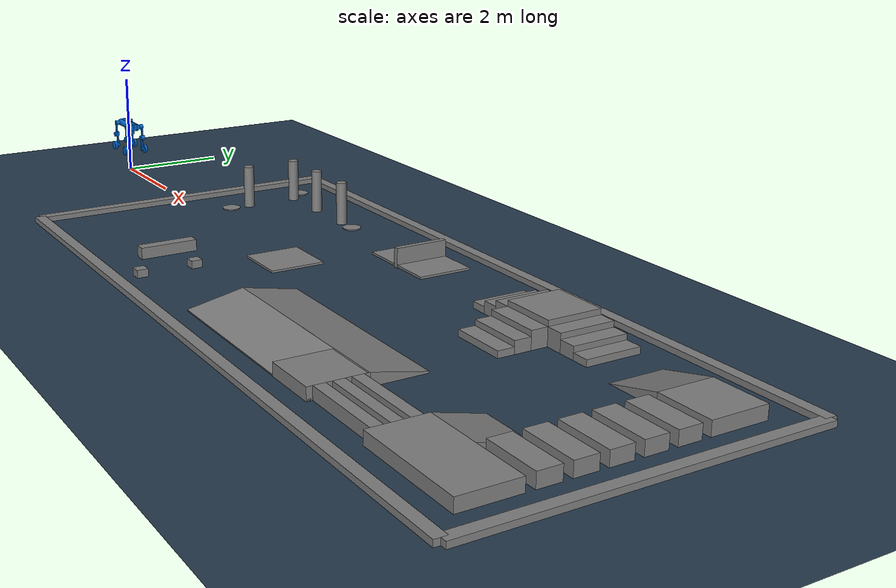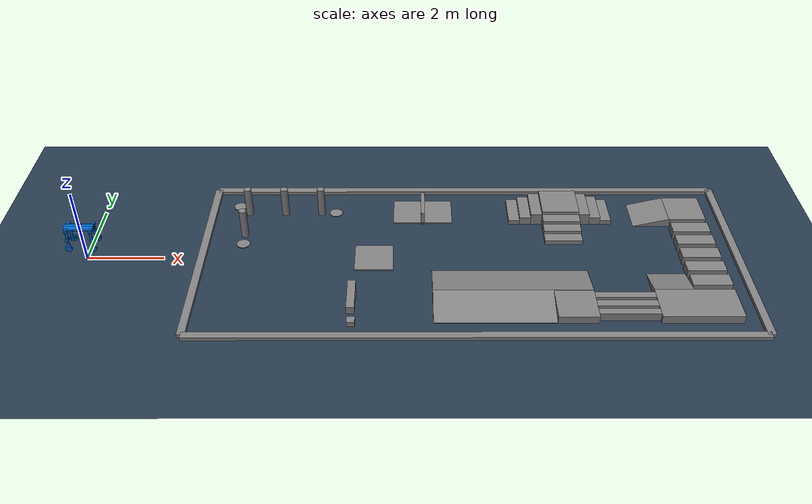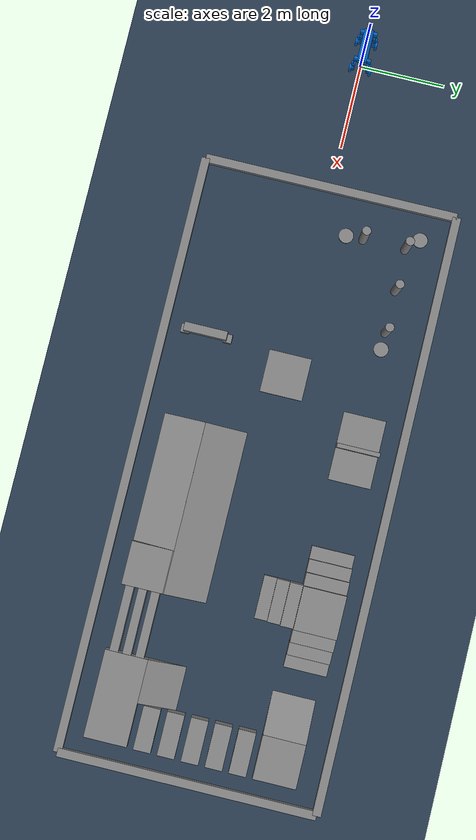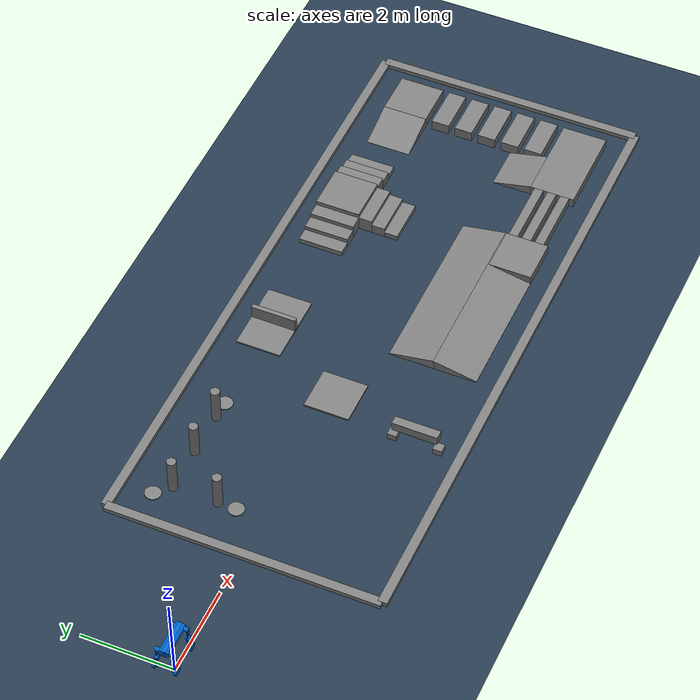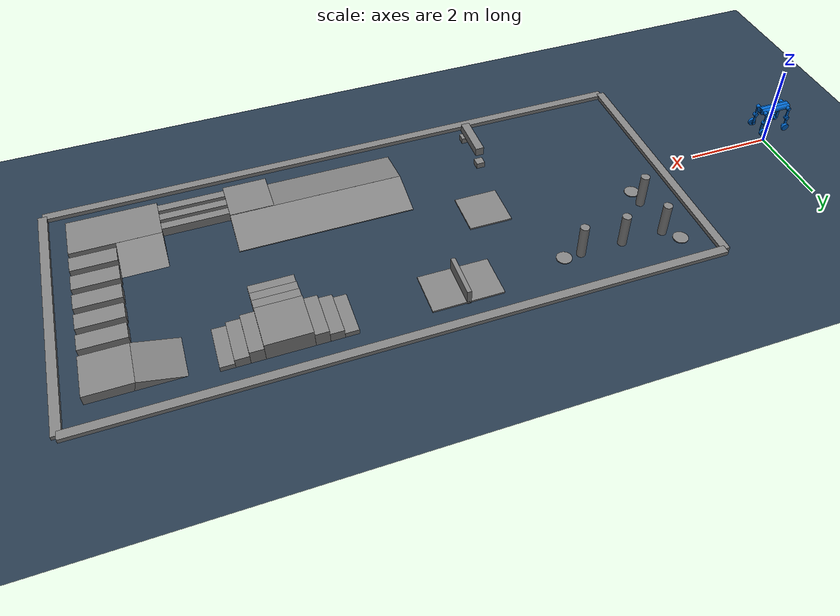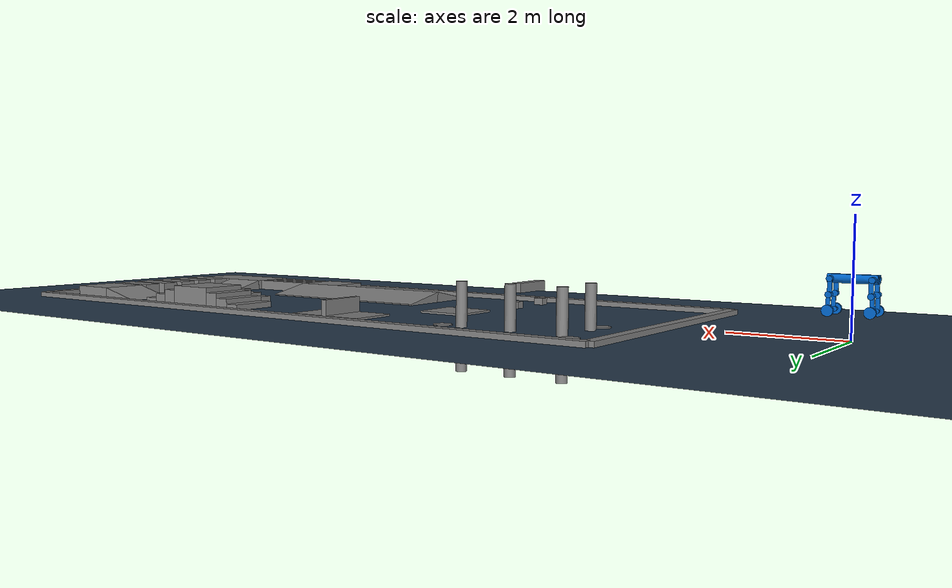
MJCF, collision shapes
<mujoco model="M20">

    <default>
        <default class="robot">
            <default class="motor">
                <joint/>
                <motor/>
            </default>
            <default class="visual">
                <geom material="default_material" contype="0" conaffinity="0" group="2"/>
            </default>
            <default class="collision">
                <geom material="collision_material" condim="3" contype="1" conaffinity="1" solref="0.005 1"
                      friction="1 0.01 0.001" density="0" group="1"/>
            </default>
        </default>
    </default>

    <compiler angle="radian" meshdir="../meshes/"/>
    <compiler autolimits="true"/>

    <asset>
        <material name="default_material" rgba="0.7 0.7 0.7 1"/>
        <material name="collision_material" rgba="0.0 0.4 0.8 0.2"/>
        <mesh name="base_link" file="base_link.STL"/>
        <mesh name="fl_hipx" file="fl_hipx.STL"/>
        <mesh name="fl_hipy" file="fl_hipy.STL"/>
        <mesh name="fl_knee" file="fl_knee.STL"/>
        <mesh name="fl_wheel" file="fl_wheel.STL"/>
        <mesh name="fr_hipx" file="fr_hipx.STL"/>
        <mesh name="fr_hipy" file="fr_hipy.STL"/>
        <mesh name="fr_knee" file="fr_knee.STL"/>
        <mesh name="fr_wheel" file="fr_wheel.STL"/>
        <mesh name="hl_hipx" file="hl_hipx.STL"/>
        <mesh name="hl_hipy" file="hl_hipy.STL"/>
        <mesh name="hl_knee" file="hl_knee.STL"/>
        <mesh name="hl_wheel" file="hl_wheel.STL"/>
        <mesh name="hr_hipx" file="hr_hipx.STL"/>
        <mesh name="hr_hipy" file="hr_hipy.STL"/>
        <mesh name="hr_knee" file="hr_knee.STL"/>
        <mesh name="hr_wheel" file="hr_wheel.STL"/>
        <texture name="texplane" type="2d" builtin="checker" rgb1=".2 .3 .4" rgb2=".1 0.15 0.2"
                 width="512" height="512"/>
        <material name='MatPlane' reflectance='0.3' texture="texplane" texrepeat="1 1" texuniform="true"/>
    </asset>

    <worldbody>
    <!-- 匍匐 -->
    <geom pos="7 -2.5 0.02" type="box" size="0.1 0.1 0.1" quat="1.0 0 0 0"/>
    <geom pos="7 -2 0.4" type="box" size="0.1 0.5 0.1" quat="1.0 0 0 0"/>
    <geom pos="7 -1.5 0.02" type="box" size="0.1 0.1 0.1" quat="1.0 0 0 0"/>
    <!-- 楼梯 -->

    <geom pos="11.3 2 0" type="box"  size="0.15 0.5 0.1" quat="1.0 0 0 0"/>
    <geom pos="11.6 2 0" type="box"  size="0.15 0.5 0.2" quat="1.0 0 0 0"/>
    <geom pos="11.9 2 0" type="box"  size="0.15 0.5 0.3" quat="1.0 0 0 0"/>
    <geom pos="12.55 2 0" type="box"  size="0.5 0.5 0.4" quat="1.0 0 0 0"/>
    <geom pos="13.2 2 0" type="box"  size="0.15 0.5 0.3" quat="1.0 0 0 0"/>
    <geom pos="13.5 2 0" type="box"  size="0.15 0.5 0.2" quat="1.0 0 0 0"/>
    <geom pos="13.8 2 0" type="box"  size="0.15 0.5 0.1" quat="1.0 0 0 0"/>
    <geom pos="12.55 1.35 0" type="box"  size="0.5 0.15 0.3" quat="1.0 0 0 0"/>
    <geom pos="12.55 1.05 0" type="box"  size="0.5 0.15 0.2" quat="1.0 0 0 0"/>
    <geom pos="12.55 0.75 0" type="box"  size="0.5 0.15 0.1" quat="1.0 0 0 0"/>
    <!-- 场地 -->
    <geom pos="10 3 0.04" type="box" size=" 7 0.1 0.05" quat="1.0 0 0 0"/>
    <geom pos="10 -3 0.04" type="box" size=" 7 0.1 0.05" quat="1.0 0 0 0"/>
    <geom pos="3 0 0.04" type="box" size=" 0.1 3 0.05" quat="1.0 0 0 0"/>
    <geom pos="17 0 0.04" type="box" size=" 0.1 3 0.05" quat="1.0 0 0 0"/>
    <!-- 启动区  -->
    <geom pos="7.5 0 0.0" type="box" size=" 0.5 0.5 0.02" quat="1.0 0 0 0"/>
    <!--  斜坡  -->
    <geom pos="12.5 -2 0" type="box" size=" 0.5 0.5 0.2" quat="1.0 0 0 0"/>
    <geom pos="13.75 -1.7 0" type="box" size=" 0.75 0.1 0.2" quat="1.0 0 0 0"/>
    <geom pos="13.75 -2 0" type="box" size=" 0.75 0.1 0.2" quat="1.0 0 0 0"/>
    <geom pos="13.75 -2.3 0" type="box" size=" 0.75 0.1 0.2" quat="1.0 0 0 0"/>
    <geom pos="15.5 -2 0" type="box" size=" 1 0.5 0.2" quat="1.0 0 0 0"/>
    <geom pos="16 -1.15 0.02" type="box" size="0.5 0.2 0.2" quat="1.0 0 0 0"/>
    <geom pos="16 -0.6 0.02" type="box" size="0.5 0.2 0.2" quat="1.0 0 0 0"/>
    <geom pos="16 -0.05 0.02" type="box" size="0.5 0.2 0.2" quat="1.0 0 0 0"/>
    <geom pos="16 0.5 0.02" type="box" size="0.5 0.2 0.2" quat="1.0 0 0 0"/>
    <geom pos="16 1.05 0.02" type="box" size="0.5 0.2 0.2" quat="1.0 0 0 0"/>
    <geom pos="16 1.9 0.02" type="box" size="0.5 0.5 0.2" quat="1.0 0 0 0"/>
    <geom pos="15.065 1.9 -0.095" type="box" size="0.5 0.5 0.2" quat="0.992546 0 -0.121869 0"/>
    <geom pos="15.0 -1.065 -0.115" type="box" size="0.5 0.5 0.2" quat="0.992546 -0.121869 0  0"/>
    <geom pos="11.0 -1.97 -0.09" type="box" size="2 0.5 0.2" quat="0.9951  0.0986 0 0"/>
    <geom pos="11.0 -1.07 -0.09" type="box" size="2 0.5 0.2" quat="0.9951  -0.0986 0 0"/>
    <!--  高墙  -->
    <geom pos="8.8 2 0.02" type="box" size="0.8 0.5 0.02" quat="1.0 0 0 0"/>
    <geom pos="8.8 2 0.02" type="box" size="0.05 0.5 0.32" quat="1.0 0 0 0"/>
    <!--  绕杆  -->
    <geom pos="4. 0.6 0." type="cylinder" size="0.175 0.01" quat="1.0 0 0 0"/>
    <geom pos="3.7 2.3 0." type="cylinder" size="0.175 0.01" quat="1.0 0 0 0"/>
    <geom pos="6.4 2 0." type="cylinder" size="0.175 0.01" quat="1.0 0 0 0"/>
    <geom pos="4. 1 0." type="cylinder" size="0.1 0.8" quat="1.0 0 0 0"/>
    <geom pos="4. 2 0." type="cylinder" size="0.1 0.8" quat="1.0 0 0 0"/>
    <geom pos="5. 2 0." type="cylinder" size="0.1 0.8" quat="1.0 0 0 0"/>
    <geom pos="6. 2 0." type="cylinder" size="0.1 0.8" quat="1.0 0 0 0"/>

        <light directional="true" pos="-0.5 0.5 3" dir="0 0 -1"/>
        <geom name='floor' pos='0 0 0' size='100 100 .125' type='plane' material="MatPlane" condim='3'
              friction="1 0.01 0.01" group="0"/>

        <body name="base_link" pos="0 0. 1." quat="1 0 0 0" childclass="robot">
            <freejoint name="floating_base"/>
            <inertial pos="0.00355105878308153 0.0016507579200937 -0.00346462146571654"
                      quat="1 0 0 0"
                      mass="15.882" diaginertia="0.087919 0.533522 0.563492"/>

            <site name="imu" pos="0.0632 -0.0268 0.0435" size="0.005" rgba="1 0 0 1"/>
            <site name="base_site" pos="0 0 0" quat="1 0 0 0"/>

            <geom type="mesh" mesh="base_link" class="visual"/>
            <geom size="0.375 0.045 0.07" type="box" class="collision"/>
            <geom size="0.07 0.375" pos="0 0.045 0" quat="0.707107 0 0.707107 0" type="cylinder" class="collision"/>
            <geom size="0.07 0.375" pos="0 -0.045 0" quat="0.707107 0 0.707107 0" type="cylinder" class="collision"/>

            <body name="fl_hipx" pos="0.3141 0.0685 0">
                <inertial pos="-0.0111893 0.00891693 0.000405666" quat="0.581628 0.481707 0.465607 0.461387"
                          mass="0.259964"
                          diaginertia="0.000374402 0.000286289 0.000179309"/>
                <joint name="fl_hipx_joint" pos="0 0 0" axis="-1 0 0" range="-0.436 0.611"
                       actuatorfrcrange="-76.4 76.4"/>
                <geom type="mesh" mesh="fl_hipx" class="visual"/>
                <geom size="0.048 0.07" pos="0 0.055 0" quat="0.707107 0.707107 0 0" type="cylinder" class="collision"/>
                <body name="fl_hipy">
                    <inertial pos="-0.00199375 0.098439 -0.130664" quat="0.6754 -0.0565887 0.0622156 0.73264"
                              mass="2.618"
                              diaginertia="0.0410181 0.0408067 0.00297328"/>
                    <joint name="fl_hipy_joint" pos="0 0 0" axis="0 -1 0" range="-2.286 2.583"
                           actuatorfrcrange="-76.4 76.4"/>
                    <geom type="mesh" mesh="fl_hipy" class="visual"/>
                    <geom size="0.035 0.01 0.125" pos="-0.01 0.11 -0.125" type="box" class="collision"/>
                    <geom size="0.05 0.045" pos="0 0.11 -0.25" quat="0.707107 0.707107 0 0" type="cylinder"
                          class="collision"/>
                    <body name="fl_knee" pos="0 0.0984 -0.25">
                        <inertial pos="0.00341917 0.00269124 -0.181265" quat="0.633405 -0.0508555 0.0475887 0.77068"
                                  mass="1.145" diaginertia="0.0121304 0.0117245 0.000948105"/>
                        <joint name="fl_knee_joint" pos="0 0 0" axis="0 -1 0" range="-2.809 2.792"
                               actuatorfrcrange="-76.4 76.4"/>
                        <geom type="mesh" mesh="fl_knee" class="visual"/>
                        <geom size="0.03 0.0125 0.125" pos="0.015 -0.015 -0.125" type="box" class="collision"/>
                        <geom size="0.04 0.05" pos="0 0.02 -0.25" quat="0.707107 0.707107 0 0" type="cylinder"
                              class="collision"/>
                        <body name="fl_wheel" pos="0 0.059676 -0.25">
                            <inertial pos="-3.11398e-07 0.000279002 5.70329e-07" quat="0.707107 0 0 0.707107"
                                      mass="0.638"
                                      diaginertia="0.002853 0.001535 0.001535"/>
                            <joint name="fl_wheel_joint" pos="0 0 0" axis="0 -1 0" actuatorfrcrange="-21.6 21.6"/>
                            <geom type="mesh" mesh="fl_wheel" class="visual"/>
                            <geom size="0.09 0.027" quat="0.707107 0.707107 0 0" type="cylinder" class="collision"/>
                        </body>
                    </body>
                </body>
            </body>
            <body name="hl_hipx" pos="-0.3141 0.0685 0">
                <inertial pos="0.0110901 0.00875014 0.000524884" quat="0.465607 0.461387 0.581628 0.481707"
                          mass="0.259964"
                          diaginertia="0.000374402 0.000286289 0.000179309"/>
                <joint name="hl_hipx_joint" pos="0 0 0" axis="-1 0 0" range="-0.436 0.611"
                       actuatorfrcrange="-76.4 76.4"/>
                <geom type="mesh" mesh="hl_hipx" class="visual"/>
                <geom size="0.048 0.07" pos="0 0.055 0" quat="0.707107 0.707107 0 0" type="cylinder" class="collision"/>
                <body name="hl_hipy">
                    <inertial pos="0.00204343 0.0990227 -0.130697" quat="0.750359 -0.0628584 0.0546506 0.655761"
                              mass="2.618" diaginertia="0.0408376 0.0406211 0.00299727"/>
                    <joint name="hl_hipy_joint" pos="0 0 0" axis="0 -1 0" range="-2.583 2.286"
                           actuatorfrcrange="-76.4 76.4"/>
                    <geom type="mesh" mesh="hl_hipy" class="visual"/>
                    <geom size="0.035 0.01 0.125" pos="0.01 0.11 -0.125" type="box" class="collision"/>
                    <geom size="0.05 0.045" pos="0 0.11 -0.25" quat="0.707107 0.707107 0 0" type="cylinder"
                          class="collision"/>
                    <body name="hl_knee" pos="0 0.0984 -0.25">
                        <inertial pos="-0.00354945 0.00247885 -0.180089" quat="0.769194 -0.0472982 0.0504711 0.635261"
                                  mass="1.145" diaginertia="0.0122564 0.0118448 0.000951718"/>
                        <joint name="hl_knee_joint" pos="0 0 0" axis="0 -1 0" range="-2.792 2.809"
                               actuatorfrcrange="-76.4 76.4"/>
                        <geom type="mesh" mesh="hl_knee" class="visual"/>
                        <geom size="0.03 0.0125 0.125" pos="-0.015 0.015 -0.125" type="box" class="collision"/>
                        <geom size="0.04 0.05" pos="0 0.02 -0.25" quat="0.707107 0.707107 0 0" type="cylinder"
                              class="collision"/>
                        <body name="hl_wheel" pos="0 0.059676 -0.25">
                            <inertial pos="-6.07889e-07 0.000279009 2.1049e-07" quat="0.707107 0 0 0.707107"
                                      mass="0.638"
                                      diaginertia="0.002853 0.001535 0.001535"/>
                            <joint name="hl_wheel_joint" pos="0 0 0" axis="0 -1 0" actuatorfrcrange="-21.6 21.6"/>
                            <geom type="mesh" mesh="hl_wheel" class="visual"/>
                            <geom size="0.09 0.027" quat="0.707107 0.707107 0 0" type="cylinder" class="collision"/>
                        </body>
                    </body>
                </body>
            </body>
            <body name="fr_hipx" pos="0.3141 -0.0685 0">
                <inertial pos="-0.0110901 -0.00875035 0.000521421" quat="0.461387 0.465607 0.481707 0.581628"
                          mass="0.259964" diaginertia="0.000374402 0.000286289 0.000179309"/>
                <joint name="fr_hipx_joint" pos="0 0 0" axis="-1 0 0" range="-0.611 0.436"
                       actuatorfrcrange="-76.4 76.4"/>
                <geom type="mesh" mesh="fr_hipx" class="visual"/>
                <geom size="0.048 0.07" pos="0 -0.055 0" quat="0.707107 0.707107 0 0" type="cylinder"
                      class="collision"/>
                <body name="fr_hipy">
                    <inertial pos="-0.00229992 -0.0989709 -0.130925" quat="0.6964 0.0586688 -0.0587886 0.712831"
                              mass="2.618" diaginertia="0.0407542 0.040538 0.00301281"/>
                    <joint name="fr_hipy_joint" pos="0 0 0" axis="0 -1 0" range="-2.286 2.583"
                           actuatorfrcrange="-76.4 76.4"/>
                    <geom type="mesh" mesh="fr_hipy" class="visual"/>
                    <geom size="0.035 0.01 0.125" pos="-0.01 -0.11 -0.125" type="box" class="collision"/>
                    <geom size="0.05 0.045" pos="0 -0.11 -0.25" quat="0.707107 0.707107 0 0" type="cylinder"
                          class="collision"/>
                    <body name="fr_knee" pos="0 -0.0984 -0.25">
                        <inertial pos="0.00354945 -0.00247884 -0.180089" quat="0.769194 0.0472982 -0.0504711 0.635261"
                                  mass="1.145" diaginertia="0.0122564 0.0118448 0.000951718"/>
                        <joint name="fr_knee_joint" pos="0 0 0" axis="0 -1 0" range="-2.809 2.792"
                               actuatorfrcrange="-76.4 76.4"/>
                        <geom type="mesh" mesh="fr_knee" class="visual"/>
                        <geom size="0.03 0.0125 0.125" pos="0.015 0.015 -0.125" type="box" class="collision"/>
                        <geom size="0.04 0.05" pos="0 -0.02 -0.25" quat="0.707107 0.707107 0 0" type="cylinder"
                              class="collision"/>
                        <body name="fr_wheel" pos="0 -0.059676 -0.25">
                            <inertial pos="-6.47327e-07 -0.000279012 -4.6242e-08" quat="0.707107 0 0 0.707107"
                                      mass="0.638"
                                      diaginertia="0.002853 0.001535 0.001535"/>
                            <joint name="fr_wheel_joint" pos="0 0 0" axis="0 -1 0" actuatorfrcrange="-21.6 21.6"/>
                            <geom type="mesh" mesh="fr_wheel" class="visual"/>
                            <geom size="0.09 0.027" quat="0.707107 0.707107 0 0" type="cylinder" class="collision"/>
                        </body>
                    </body>
                </body>
            </body>

            <body name="hr_hipx" pos="-0.3141 -0.0685 0">
                <inertial pos="0.0110902 -0.00875012 0.000524937" quat="0.481707 0.581628 0.461387 0.465607"
                          mass="0.259964"
                          diaginertia="0.000374402 0.000286289 0.000179309"/>
                <joint name="hr_hipx_joint" pos="0 0 0" axis="-1 0 0" range="-0.611 0.436"
                       actuatorfrcrange="-76.4 76.4"/>
                <geom type="mesh" mesh="hr_hipx" class="visual"/>
                <geom size="0.048 0.07" pos="0 -0.055 0" quat="0.707107 0.707107 0 0" type="cylinder"
                      class="collision"/>
                <body name="hr_hipy">
                    <inertial pos="0.001992 -0.0983704 -0.130561" quat="0.676694 0.0567616 -0.0621797 0.731435"
                              mass="2.618"
                              diaginertia="0.0410109 0.0408028 0.00297526"/>
                    <joint name="hr_hipy_joint" pos="0 0 0" axis="0 -1 0" range="-2.583 2.286"
                           actuatorfrcrange="-76.4 76.4"/>
                    <geom type="mesh" mesh="hr_hipy" class="visual"/>
                    <geom size="0.035 0.01 0.125" pos="0.01 -0.11 -0.125" type="box" class="collision"/>
                    <geom size="0.05 0.045" pos="0 -0.11 -0.25" quat="0.707107 0.707107 0 0" type="cylinder"
                          class="collision"/>
                    <body name="hr_knee" pos="0 -0.0984 -0.25">
                        <inertial pos="-0.00341053 -0.00270202 -0.181287" quat="0.63448 0.050937 -0.0475303 0.769793"
                                  mass="1.145" diaginertia="0.0121352 0.0117289 0.000948904"/>
                        <joint name="hr_knee_joint" pos="0 0 0" axis="0 -1 0" range="-2.792 2.809"
                               actuatorfrcrange="-76.4 76.4"/>
                        <geom type="mesh" mesh="hr_knee" class="visual"/>
                        <geom size="0.03 0.0125 0.125" pos="-0.015 0.015 -0.125" type="box" class="collision"/>
                        <geom size="0.04 0.05" pos="0 -0.02 -0.25" quat="0.707107 0.707107 0 0" type="cylinder"
                              class="collision"/>
                        <body name="hr_wheel" pos="0 -0.059676 -0.25">
                            <inertial pos="6.09746e-07 -0.000279009 2.01314e-07" quat="0.707107 0 0 0.707107"
                                      mass="0.638"
                                      diaginertia="0.002853 0.001535 0.001535"/>
                            <joint name="hr_wheel_joint" pos="0 0 0" axis="0 -1 0" actuatorfrcrange="-21.6 21.6"/>
                            <geom type="mesh" mesh="hr_wheel" class="visual"/>
                            <geom size="0.09 0.027" quat="0.707107 0.707107 0 0" type="cylinder" class="collision"/>
                        </body>
                    </body>
                </body>
            </body>
        </body>
    </worldbody>

    <actuator>
        <motor name="fl_hipx_joint" joint="fl_hipx_joint" ctrllimited="true" ctrlrange="-76.4 76.4" gear="1"/>
        <motor name="fl_hipy_joint" joint="fl_hipy_joint" ctrllimited="true" ctrlrange="-76.4 76.4" gear="1"/>
        <motor name="fl_knee_joint" joint="fl_knee_joint" ctrllimited="true" ctrlrange="-76.4 76.4" gear="1"/>
        <motor name="fl_wheel_joint" joint="fl_wheel_joint" ctrllimited="true" ctrlrange="-21.6 21.6" gear="1"/>

        <motor name="hl_hipx_joint" joint="hl_hipx_joint" ctrllimited="true" ctrlrange="-76.4 76.4" gear="1"/>
        <motor name="hl_hipy_joint" joint="hl_hipy_joint" ctrllimited="true" ctrlrange="-76.4 76.4" gear="1"/>
        <motor name="hl_knee_joint" joint="hl_knee_joint" ctrllimited="true" ctrlrange="-76.4 76.4" gear="1"/>
        <motor name="hl_wheel_joint" joint="hl_wheel_joint" ctrllimited="true" ctrlrange="-21.6 21.6" gear="1"/>

        <motor name="fr_hipx_joint" joint="fr_hipx_joint" ctrllimited="true" ctrlrange="-76.4 76.4" gear="1"/>
        <motor name="fr_hipy_joint" joint="fr_hipy_joint" ctrllimited="true" ctrlrange="-76.4 76.4" gear="1"/>
        <motor name="fr_knee_joint" joint="fr_knee_joint" ctrllimited="true" ctrlrange="-76.4 76.4" gear="1"/>
        <motor name="fr_wheel_joint" joint="fr_wheel_joint" ctrllimited="true" ctrlrange="-21.6 21.6" gear="1"/>

        <motor name="hr_hipx_joint" joint="hr_hipx_joint" ctrllimited="true" ctrlrange="-76.4 76.4" gear="1"/>
        <motor name="hr_hipy_joint" joint="hr_hipy_joint" ctrllimited="true" ctrlrange="-76.4 76.4" gear="1"/>
        <motor name="hr_knee_joint" joint="hr_knee_joint" ctrllimited="true" ctrlrange="-76.4 76.4" gear="1"/>
        <motor name="hr_wheel_joint" joint="hr_wheel_joint" ctrllimited="true" ctrlrange="-21.6 21.6" gear="1"/>
    </actuator>

    <contact>
        <exclude body1="base_link" body2="fl_hipx"/>
        <exclude body1="fl_hipx" body2="fl_hipy"/>
        <exclude body1="fl_hipy" body2="fl_knee"/>
        <exclude body1="fl_knee" body2="fl_wheel"/>

        <exclude body1="base_link" body2="fr_hipx"/>
        <exclude body1="fr_hipx" body2="fr_hipy"/>
        <exclude body1="fr_hipy" body2="fr_knee"/>
        <exclude body1="fr_knee" body2="fr_wheel"/>

        <exclude body1="base_link" body2="hl_hipx"/>
        <exclude body1="hl_hipx" body2="hl_hipy"/>
        <exclude body1="hl_hipy" body2="hl_knee"/>
        <exclude body1="hl_knee" body2="hl_wheel"/>

        <exclude body1="base_link" body2="hr_hipx"/>
        <exclude body1="hr_hipx" body2="hr_hipy"/>
        <exclude body1="hr_hipy" body2="hr_knee"/>
        <exclude body1="hr_knee" body2="hr_wheel"/>

    </contact>

    <sensor>
        <framequat     name='orientation' objtype='site' noise='0.001' objname='imu'/>
        <framepos      name='position' objtype='site' noise='0.001' objname='imu'/>
        <framelinvel  name="base_lin_vel" objtype="site" objname="imu" />
        <gyro          name='angular-velocity'    site='imu' noise='0.005' cutoff='34.9'/>
        <velocimeter   name='linear-velocity'     site='imu' noise='0.001' cutoff='30'/>
        <accelerometer name='linear-acceleration' site='imu' noise='0.005' cutoff='157'/>
        <magnetometer  name='magnetometer'        site='imu'/>

    </sensor>
</mujoco>
